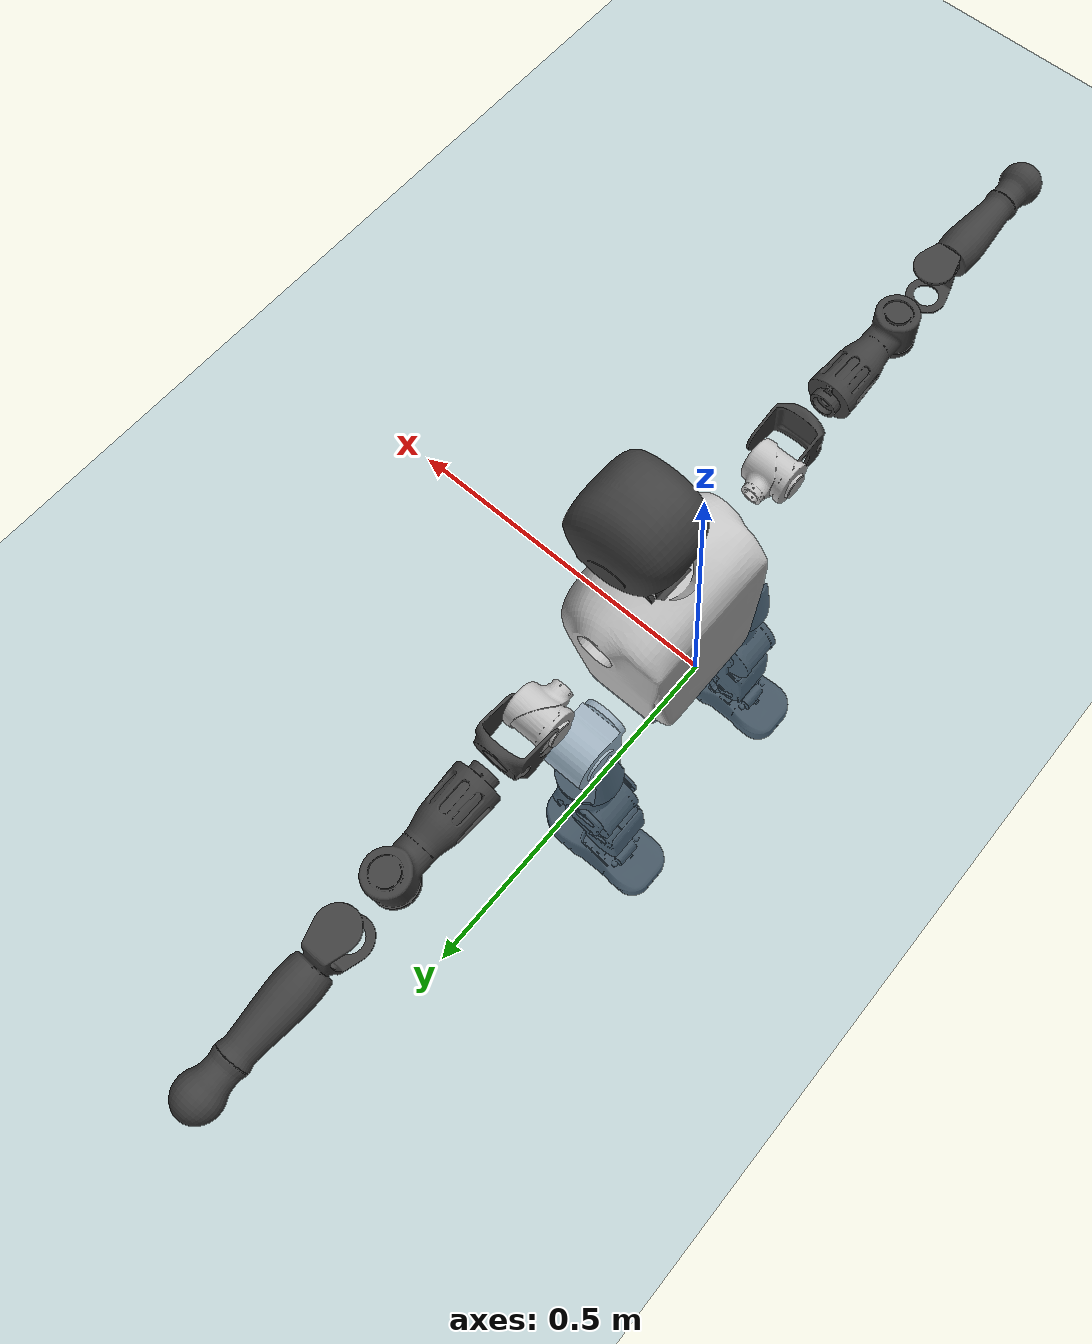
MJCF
<mujoco model="T1">
  <compiler angle="radian" assetdir="assets" balanceinertia="true" inertiafromgeom="false"/>

  <option timestep="0.005" density="1.2" viscosity="2e-05"/>

  <size nkey="1"/>

  <visual>
    <quality shadowsize="8192"/>
    <map shadowclip="0.5"/>
  </visual>

  <default>
    <default class="/">
      <joint armature="0.01" damping="0.01" frictionloss="0.1"/>
      <geom contype="0" conaffinity="0" group="1" solref="-1000 -80"/>
      <site size="0.01 0.005 0.005" group="5"/>
      <general forcelimited="true" biastype="affine" gainprm="25" biasprm="0 -25 -0.6"/>
      <default class="t1">
        <geom rgba="0.25 0.25 0.25 1"/>
        <default class="visual">
          <geom type="mesh" group="2"/>
        </default>
        <default class="collision">
          <geom group="3"/>
        </default>
        <default class="foot">
          <geom size="0.1115 0.05 0.015" type="box" condim="6" group="4" priority="1" solimp="0.015 1 0.015"/>
        </default>
        <default class="reward_collision_sphere">
          <geom group="5" rgba="1 0 0 1"/>
        </default>
      </default>
    </default>
  </default>

  <asset>
    <texture type="skybox" colorspace="auto" name="//unnamed_texture_0" builtin="gradient" rgb1="0.95 0.95 0.95" rgb2="0.95 0.95 0.95" width="100" height="600"/>
    <texture type="2d" colorspace="auto" name="texplane" builtin="checker" rgb1="0.345 0.575 0.748" rgb2="0.345 0.575 0.748" markrgb="1 1 1" width="512" height="512"/>
    <material name="MatPlane" class="/" texture="texplane" texuniform="true" texrepeat="2 2" specular="0.9"/>
    <mesh name="Trunk" class="/" file="Trunk.stl"/>
    <mesh name="H1" class="/" file="H1.stl"/>
    <mesh name="H2" class="/" file="H2.stl"/>
    <mesh name="AL1" class="/" file="AL1.stl"/>
    <mesh name="AL2" class="/" file="AL2.stl"/>
    <mesh name="AL3" class="/" file="AL3.stl"/>
    <mesh name="left_hand_link" class="/" file="left_hand_link.stl"/>
    <mesh name="AR1" class="/" file="AR1.stl"/>
    <mesh name="AR2" class="/" file="AR2.stl"/>
    <mesh name="AR3" class="/" file="AR3.stl"/>
    <mesh name="right_hand_link" class="/" file="right_hand_link.stl"/>
    <mesh name="Waist" class="/" file="Waist.stl"/>
    <mesh name="Hip_Pitch_Left" class="/" file="Hip_Pitch_Left.stl"/>
    <mesh name="Hip_Roll_Left" class="/" file="Hip_Roll_Left.stl"/>
    <mesh name="Hip_Yaw_Left" class="/" file="Hip_Yaw_Left.stl"/>
    <mesh name="Shank_Left" class="/" file="Shank_Left.stl"/>
    <mesh name="Ankle_Cross_Left" class="/" file="Ankle_Cross_Left.stl"/>
    <mesh name="left_foot_link" class="/" file="left_foot_link.stl"/>
    <mesh name="Hip_Pitch_Right" class="/" file="Hip_Pitch_Right.stl"/>
    <mesh name="Hip_Roll_Right" class="/" file="Hip_Roll_Right.stl"/>
    <mesh name="Hip_Yaw_Right" class="/" file="Hip_Yaw_Right.stl"/>
    <mesh name="Shank_Right" class="/" file="Shank_Right.stl"/>
    <mesh name="Ankle_Cross_Right" class="/" file="Ankle_Cross_Right.stl"/>
    <mesh name="right_foot_link" class="/" file="right_foot_link.stl"/>
  </asset>

  <worldbody>
    <geom name="floor" class="/" size="100 100 0.125" type="plane" group="0" material="MatPlane"/>
    <light name="toplight_shadow" class="/" pos="0 0 5" dir="0.0990148 0.0990148 -0.990148" type="directional" ambient="0.04 0.04 0.04" diffuse="0.55 0.55 0.55" specular="0.12 0.12 0.12"/>
    <light name="toplight_fill" class="/" pos="0 0 5" dir="0.0990148 0.0990148 -0.990148" type="directional" castshadow="false" ambient="0.04 0.04 0.04" diffuse="0.3 0.3 0.3" specular="0.08 0.08 0.08"/>
    <body name="trunk" childclass="t1" pos="0.000595483 0.00499185 0.00451594" quat="1 -0.000202047 0.000211937 0.000180618">
      <inertial pos="0.0423772 -0.0141798 0.079942" quat="0.999047 -0.0174257 -0.00835674 -0.0391292" mass="18.5455" diaginertia="0.0663104 0.88378 0.0319285"/>
      <joint name="//unnamed_joint_0" type="free" armature="0" damping="0" frictionloss="0"/>
      <geom name="//unnamed_geom_1" class="visual" rgba="0.76 0.76 0.76 1" mesh="Trunk"/>
      <geom name="//unnamed_geom_2" class="collision" size="0.0851289 0.113505 0.170258" pos="0.0553204 0 0.104866" type="box"/>
      <geom name="//unnamed_geom_3" class="reward_collision_sphere" size="0.130531" pos="0.0553204 0 0.0873883"/>
      <geom name="//unnamed_geom_4" class="reward_collision_sphere" size="0.0170258" pos="0.0553204 0.136788 0"/>
      <geom name="//unnamed_geom_5" class="reward_collision_sphere" size="0.0170258" pos="0.0553204 -0.136788 0"/>
      <geom name="//unnamed_geom_6" class="reward_collision_sphere" size="0.0170258" pos="0.0553204 0.172191 0.157299"/>
      <geom name="//unnamed_geom_7" class="reward_collision_sphere" size="0.0170258" pos="0.0553204 -0.172191 0.157299"/>
      <site name="imu" pos="0.0373429 0.0318947 -0.0173577" size="0.0113505"/>
      <camera name="track" pos="0 -3.21853 0" quat="0.707107 0.707107 0 0" mode="trackcom"/>
      <camera name="ego_camera" pos="0.112485 0 0.367031" quat="-0.5 -0.5 0.5 0.5"/>
      <body name="H1" pos="0.0620992 0.0111124 0.20048" quat="1 0.000302114 -2.00223e-05 5.8999e-05">
        <inertial pos="-0.00135888 -0.0165122 0.0524955" quat="0.758081 0.0172673 -0.0470611 0.65023" mass="0.728878" diaginertia="0.000168535 0.00272511 7.35518e-05"/>
        <joint name="AAHead_yaw" pos="0 0 0" axis="0.0221894 0.0154247 0.999635" stiffness="0.00696883" range="-1.55527 1.81511" armature="0.0107787" damping="0" frictionloss="0.196909"/>
        <geom name="//unnamed_geom_8" class="visual" mesh="H1"/>
        <body name="H2" pos="-0.00349459 0.00471776 0.0648847" quat="1 4.84248e-05 3.87628e-05 -2.68306e-05">
          <inertial pos="0.0111863 0.0144441 0.0910463" quat="0.995788 0.0617608 -0.035023 -0.0580096" mass="0.939235" diaginertia="0.00135757 0.0210879 0.000775237"/>
          <joint name="Head_pitch" pos="0 0 0" axis="-0.0012404 -0.999881 0.0153967" stiffness="0.00333619" range="-1.22438 0.324491" armature="0.0105671" damping="0" frictionloss="0.161484"/>
          <geom name="//unnamed_geom_9" class="visual" mesh="H2"/>
          <geom name="//unnamed_geom_10" class="collision" size="0.0908041" pos="0.00922007 0 0.0961271"/>
          <geom name="//unnamed_geom_11" class="reward_collision_sphere" size="0.102155" pos="0.0184401 0 0.0873883"/>
        </body>
      </body>
      <body name="AL1" pos="0.0619989 0.173858 0.198476" quat="0.999982 -0.00258939 -0.00148781 0.0051133">
        <inertial pos="-0.000537907 0.0784902 0.00537035" quat="0.475332 0.547241 -0.480443 0.493722" mass="0.784273" diaginertia="0.000869703 0.0119763 0.000150856"/>
        <joint name="Left_Shoulder_Pitch" pos="0 0 0" axis="-0.00253819 0.999983 0.00517516" stiffness="0.000823762" range="-3.36038 0.999277" armature="0.0113579" damping="0.0240088" frictionloss="0.109254"/>
        <geom name="//unnamed_geom_12" class="visual" rgba="0.76 0.76 0.76 1" mesh="AL1"/>
        <body name="AL2" pos="-6.56126e-06 0.06488 0.00887039" quat="0.99999 -0.00241481 0.00129206 -0.00356216">
          <inertial pos="-0.00886056 0.0471327 -0.00729377" quat="0.463642 0.469998 -0.495891 0.56412" mass="0.215036" diaginertia="0.000268209 0.00369312 7.58986e-05"/>
          <joint name="Left_Shoulder_Roll" pos="0 0 0" axis="-0.999998 0.00115609 -0.00144892" range="-1.57129 1.74324" armature="0.0101382" damping="0" frictionloss="0.128912"/>
          <geom name="//unnamed_geom_13" class="visual" mesh="AL2"/>
          <body name="AL3" pos="0.00101756 0.0829032 -0.00675354" quat="0.999999 0.00060292 -6.81501e-05 -0.000837963">
            <inertial pos="0.0129844 0.137297 0.00767741" quat="0.681713 0.73115 0.0241339 -0.0102914" mass="1.13462" diaginertia="0.0077669 0.115984 0.000260784"/>
            <joint name="Left_Elbow_Pitch" pos="0 0 0" axis="0.0140226 -0.999485 -0.0288623" range="-2.3153 2.01626" armature="0.011863" damping="0" frictionloss="0.109236"/>
            <geom name="//unnamed_geom_14" class="visual" mesh="AL3"/>
            <geom name="//unnamed_geom_15" class="collision" size="0.0340516 0.0851289" pos="0 0.0804633 0" quat="0.707105 0.707108 0 0" type="cylinder"/>
            <geom name="//unnamed_geom_16" class="reward_collision_sphere" size="0.0408619"/>
            <body name="left_hand_link" pos="-0.00611955 0.224148 0.0135255" quat="1 0.000698964 -0.000440982 0.000528854">
              <inertial pos="-0.000833482 0.177493 0.000231616" quat="0.696703 0.717263 0.000557787 -0.0117762" mass="0.46609" diaginertia="0.00615572 0.0870886 0.000111501"/>
              <joint name="Left_Elbow_Yaw" pos="0 0 0" axis="0.0235259 0.00447119 0.999713" range="-2.18962 0.011235" armature="0.0099988" damping="0.0800419" frictionloss="0.055229"/>
              <geom name="//unnamed_geom_17" class="visual" mesh="left_hand_link"/>
              <geom name="//unnamed_geom_18" class="collision" size="0.0340516 0.099317" pos="0 0.209205 0" quat="0.707105 0.707108 0 0" type="cylinder"/>
              <geom name="//unnamed_geom_19" class="reward_collision_sphere" size="0.0567526"/>
              <geom name="//unnamed_geom_20" class="reward_collision_sphere" size="0.0397268" pos="0 0.177019 0"/>
              <geom name="//unnamed_geom_21" class="reward_collision_sphere" size="0.0397268" pos="0 0.345992 0"/>
            </body>
          </body>
        </body>
      </body>
      <body name="AR1" pos="0.0493993 -0.170018 0.196167" quat="0.999993 0.00124287 -0.00185949 -0.00315708">
        <inertial pos="0.0072689 -0.0737794 0.0128327" quat="0.515907 0.527626 -0.451122 0.501936" mass="0.621411" diaginertia="0.000843966 0.0119687 0.0001234"/>
        <joint name="Right_Shoulder_Pitch" pos="0 0 0" axis="-0.0330631 -0.999438 -0.00545257" range="-1.24113 3.2861" armature="0.010046" damping="0.0655438" frictionloss="0.189111"/>
        <geom name="//unnamed_geom_22" class="visual" rgba="0.76 0.76 0.76 1" mesh="AR1"/>
        <body name="AR2" pos="0.0127499 -0.0735851 -0.00181913" quat="1 -0.000136993 -0.000260053 0.000345401">
          <inertial pos="0.0111104 -0.0468821 -0.0018095" quat="0.494074 0.530227 -0.470472 0.503394" mass="0.218276" diaginertia="0.000227022 0.00343642 7.58893e-05"/>
          <joint name="Right_Shoulder_Roll" pos="0 0 0" axis="-0.999071 0.0264007 0.0340657" range="-1.74365 1.55861" armature="0.0110836" damping="0.079938" frictionloss="0.09361"/>
          <geom name="//unnamed_geom_23" class="visual" mesh="AR2"/>
          <body name="AR3" pos="-0.00327558 -0.100447 0.00540777" quat="0.999992 -0.00298729 0.00244698 -0.00105186">
            <inertial pos="-0.00399586 -0.136199 0.00325821" quat="0.732126 0.680794 -0.00857636 0.0209261" mass="1.36382" diaginertia="0.00774696 0.146321 0.000302835"/>
            <joint name="Right_Elbow_Pitch" pos="0 0 0" axis="-0.0186372 0.99971 0.0152683" stiffness="0.00203628" range="-2.24016 2.18231" armature="0.0106813" damping="0" frictionloss="0.0995073"/>
            <geom name="//unnamed_geom_24" class="visual" mesh="AR3"/>
            <geom name="//unnamed_geom_25" class="collision" size="0.0340516 0.0851289" pos="0 -0.0804633 0" quat="0.707105 0.707108 0 0" type="cylinder"/>
            <geom name="//unnamed_geom_26" class="reward_collision_sphere" size="0.0408619"/>
            <body name="right_hand_link" pos="0.00984243 -0.24483 -0.0138293" quat="0.999991 -0.00294669 -0.00232681 -0.00203952">
              <inertial pos="0.00155048 -0.185315 -0.00460538" quat="0.716189 0.697905 0.00067925 0.00143693" mass="0.455785" diaginertia="0.00477401 0.0768915 0.000107455"/>
              <joint name="Right_Elbow_Yaw" pos="0 0 0" axis="0.000474422 0.00649528 0.999979" range="-0.170355 2.41407" armature="0.0115772" damping="0.0088156" frictionloss="0.040282"/>
              <geom name="//unnamed_geom_27" class="visual" mesh="right_hand_link"/>
              <geom name="//unnamed_geom_28" class="collision" size="0.0340516 0.099317" pos="0 -0.209205 0" quat="0.707105 0.707108 0 0" type="cylinder"/>
              <geom name="//unnamed_geom_29" class="reward_collision_sphere" size="0.0567526"/>
              <geom name="//unnamed_geom_30" class="reward_collision_sphere" size="0.0397268" pos="0 -0.177019 0"/>
              <geom name="//unnamed_geom_31" class="reward_collision_sphere" size="0.0397268" pos="0 -0.345992 0"/>
            </body>
          </body>
        </body>
      </body>
      <body name="Waist" pos="0.0676371 0.00100306 -0.0884078" quat="0.999997 -0.000776614 0.000664947 0.00210217">
        <inertial pos="0.0171255 -0.00286962 0.00456834" quat="0.984228 0.00405217 -0.176796 0.00463835" mass="4.63598" diaginertia="0.00460255 0.0625657 0.00248759"/>
        <joint name="Waist" pos="0 0 0" axis="-0.00923602 -0.0201666 0.999754" stiffness="0.00611193" range="-1.42326 1.59705" armature="0.00664986" damping="0" frictionloss="0.11859"/>
        <geom name="//unnamed_geom_32" class="visual" mesh="Waist"/>
        <body name="Hip_Pitch_Left" pos="-0.00159079 0.163246 0.0110195" quat="0.999999 0.000791027 -0.000673299 -0.000214491">
          <inertial pos="0.002402 -0.0221318 -0.0248419" quat="0.979354 0.200492 0.000767757 -0.0258697" mass="1.26881" diaginertia="0.00123799 0.0142265 0.000657965"/>
          <joint name="Left_Hip_Pitch" pos="0 0 0" axis="0.0108066 0.999937 -0.00306717" range="-1.8237 1.31685" armature="0.00347109" damping="0" frictionloss="0.0860138"/>
          <geom name="//unnamed_geom_33" class="visual" rgba="0.76 0.76 0.76 1" mesh="Hip_Pitch_Left"/>
          <body name="Hip_Roll_Left" pos="-0.0125789 0.00634257 -0.0105635" quat="1 0.000367161 6.63106e-05 0.000374893">
            <inertial pos="0.00784053 -0.00155736 -0.0532988" quat="0.673271 -0.0220474 -0.0532292 0.737148" mass="0.616671" diaginertia="0.00123636 0.0140467 0.000250336"/>
            <joint name="Left_Hip_Roll" pos="0 0 0" axis="-0.998445 -0.0557354 -0.000927328" range="-1.56896 0.142243" armature="0.00418104" damping="0.022129" frictionloss="0.15571"/>
            <geom name="//unnamed_geom_34" class="visual" mesh="Hip_Roll_Left"/>
            <geom name="//unnamed_geom_35" class="reward_collision_sphere" size="0.0624279"/>
            <body name="Hip_Yaw_Left" pos="0.00868513 -0.00219851 -0.0816369" quat="1 -0.000844755 -0.000115082 -0.000330317">
              <inertial pos="0.00461563 -0.00411878 -0.0754168" quat="0.694376 -0.0298594 -0.0348913 0.718146" mass="3.28441" diaginertia="0.0170667 0.313751 0.00131327"/>
              <joint name="Left_Hip_Yaw" pos="0 0 0" axis="-0.00647643 -0.00924074 -0.999936" range="-0.85501 0.765897" armature="0.011899" damping="0.0321741" frictionloss="0.106004"/>
              <geom name="//unnamed_geom_36" class="visual" mesh="Hip_Yaw_Left"/>
              <geom name="//unnamed_geom_37" class="collision" size="0.0567526 0.0908041" type="cylinder"/>
              <body name="Shank_Left" pos="-0.0267756 -0.00107487 -0.102169" quat="1 0.000361255 0.000528377 2.67926e-05">
                <inertial pos="-0.0025449 -0.0108186 -0.120601" quat="0.997544 0.0010273 -0.0233955 0.0660144" mass="2.97355" diaginertia="0.023346 0.376648 0.000902495"/>
                <joint name="Left_Knee_Pitch" pos="0 0 0" axis="-0.00156824 0.999998 -0.000878712" range="-0.132028 2.4619" armature="0.0107605" damping="0.000129444" frictionloss="0.13067"/>
                <geom name="//unnamed_geom_38" class="visual" mesh="Shank_Left"/>
                <geom name="//unnamed_geom_39" class="collision" size="0.0567526 0.0851289" pos="0 0 -0.104866" type="cylinder"/>
                <geom name="//unnamed_geom_40" class="reward_collision_sphere" size="0.0737784"/>
                <body name="Ankle_Cross_Left" pos="-0.00132248 -0.00271622 -0.255835" quat="1 0.000292103 -3.81604e-05 -0.000403554">
                  <inertial pos="0.00259121 -0.00960043 -0.0141985" quat="0.430414 0.540154 0.590129 0.418" mass="0.0942692" diaginertia="1.68711e-05 0.000309945 5.90073e-06"/>
                  <joint name="Left_Ankle_Pitch" pos="0 0 0" axis="4.7589e-05 1 0.000357536" range="-1.12383 0.299822" armature="0.0149136" damping="0.0195631" frictionloss="0.0901316"/>
                  <geom name="//unnamed_geom_41" class="visual" mesh="Ankle_Cross_Left"/>
                  <body name="left_foot_link" pos="0.00344873 0.00889123 -0.0182841" quat="0.999995 0.00107782 -0.000759577 -0.00291075">
                    <inertial pos="0.00969116 -0.000798258 0.00283576" quat="0.00138999 0.636864 -0.000787164 0.770975" mass="1.14164" diaginertia="0.00236697 0.0266629 0.00104359"/>
                    <joint name="Left_Ankle_Roll" pos="0 0 0" axis="-0.999994 -0.00224256 -0.00270809" range="-0.489648 0.443195" armature="0.0120803" damping="0.0216711" frictionloss="0.113945"/>
                    <geom name="//unnamed_geom_42" class="visual" mesh="left_foot_link"/>
                    <geom name="left_foot" class="foot" size="0.0924457 0.0296322 0.0185569" pos="0.00922007 0 -0.0131082"/>
                    <geom name="//unnamed_geom_44" class="reward_collision_sphere" size="0.0590227" pos="0.00922007 0 -0.0131082"/>
                    <geom name="//unnamed_geom_45" class="reward_collision_sphere" size="0.0340516" pos="0.0875907 -0.0370131 -0.0131082"/>
                    <geom name="//unnamed_geom_46" class="reward_collision_sphere" size="0.0340516" pos="-0.0645405 -0.0370131 -0.0131082"/>
                    <site name="left_foot" class="foot" pos="0.00922007 0 -0.0131082" size="0.0113505"/>
                  </body>
                </body>
              </body>
            </body>
          </body>
        </body>
        <body name="Hip_Pitch_Right" pos="0.00228969 -0.174634 -0.00371723" quat="0.999981 -0.000733227 0.00532109 -0.00298072">
          <inertial pos="0.0110192 0.0163908 -0.0273762" quat="0.970386 -0.241033 0.00501761 -0.0150957" mass="1.33357" diaginertia="0.00107223 0.0146435 0.000667933"/>
          <joint name="Right_Hip_Pitch" pos="0 0 0" axis="-0.00755826 -0.999948 -0.00691842" range="-1.58368 2.07762" armature="0.0162782" damping="0" frictionloss="0.120711"/>
          <geom name="//unnamed_geom_47" class="visual" rgba="0.76 0.76 0.76 1" mesh="Hip_Pitch_Right"/>
          <body name="Hip_Roll_Right" pos="-0.0129813 0.00116803 -0.00810881" quat="0.999994 0.00150646 0.00220514 -0.00206194">
            <inertial pos="0.00213807 -0.00482676 -0.0552393" quat="0.676939 -0.0370984 0.0380637 0.734117" mass="0.59493" diaginertia="0.00116616 0.0139796 0.000256839"/>
            <joint name="Right_Hip_Roll" pos="0 0 0" axis="-0.999954 -0.00489604 0.00828752" range="-0.488986 1.6268" armature="0.0119438" damping="0" frictionloss="0.0737171"/>
            <geom name="//unnamed_geom_48" class="visual" mesh="Hip_Roll_Right"/>
            <geom name="//unnamed_geom_49" class="reward_collision_sphere" size="0.0624279"/>
            <body name="Hip_Yaw_Right" pos="0.00604376 0.00329017 -0.0723982" quat="1 -1.86068e-05 0.000339276 0.000822376">
              <inertial pos="-0.00475287 0.00697953 -0.0651543" quat="0.728439 -0.0207798 -0.0310367 0.684091" mass="2.92399" diaginertia="0.0163892 0.235688 0.00138365"/>
              <joint name="Right_Hip_Yaw" pos="0 0 0" axis="0.0670638 0.0319239 -0.997238" stiffness="0.00280128" range="-1.04791 0.927147" armature="0.00493282" damping="0.071049" frictionloss="0.112285"/>
              <geom name="//unnamed_geom_50" class="visual" mesh="Hip_Yaw_Right"/>
              <geom name="//unnamed_geom_51" class="collision" size="0.0567526 0.0908041" type="cylinder"/>
              <body name="Shank_Right" pos="-0.00804316 -0.000105285 -0.127753" quat="0.999993 -0.00329625 0.00091754 0.00177274">
                <inertial pos="-0.00784954 0.00143054 -0.0969442" quat="0.999212 -0.00317417 -0.0208695 -0.0336171" mass="2.17782" diaginertia="0.0201117 0.338184 0.000819684"/>
                <joint name="Right_Knee_Pitch" pos="0 0 0" axis="0.0455292 -0.998609 -0.0265939" range="-2.59067 -0.107542" armature="0.00348964" damping="0" frictionloss="0.108399"/>
                <geom name="//unnamed_geom_52" class="visual" mesh="Shank_Right"/>
                <geom name="//unnamed_geom_53" class="collision" size="0.0567526 0.0851289" pos="0 0 -0.104866" type="cylinder"/>
                <geom name="//unnamed_geom_54" class="reward_collision_sphere" size="0.0737784"/>
                <body name="Ankle_Cross_Right" pos="0.00783784 -0.00401583 -0.245734" quat="1 -3.7898e-05 -7.6787e-05 0.000156496">
                  <inertial pos="-0.00449723 0.00834478 -0.00709892" quat="0.440338 0.567522 0.55116 0.424551" mass="0.0914752" diaginertia="1.80996e-05 0.000258067 4.8955e-06"/>
                  <joint name="Right_Ankle_Pitch" pos="0 0 0" axis="0.0257378 -0.999429 0.0218999" stiffness="0.0547061" range="-0.123058 1.10151" armature="0.0116343" damping="0" frictionloss="0.129752"/>
                  <geom name="//unnamed_geom_55" class="visual" mesh="Ankle_Cross_Right"/>
                  <body name="right_foot_link" pos="-0.0123003 0.000614653 -0.00455493" quat="1 -0.000361842 -4.94113e-05 -0.000138942">
                    <inertial pos="0.0136318 0.00337936 -0.00670755" quat="-0.00324533 0.618257 -0.00447333 0.785957" mass="1.02146" diaginertia="0.00177753 0.0290813 0.00111358"/>
                    <joint name="Right_Ankle_Roll" pos="0 0 0" axis="-0.999066 0.0427843 0.0059925" stiffness="0.00414886" range="-0.177316 0.435805" armature="0.0109737" damping="0.0636504" frictionloss="0.103902"/>
                    <geom name="//unnamed_geom_56" class="visual" mesh="right_foot_link"/>
                    <geom name="right_foot" class="foot" size="0.0930672 0.0659557 0.0199825" pos="0.00922007 0 -0.0131082"/>
                    <geom name="//unnamed_geom_58" class="reward_collision_sphere" size="0.0454021"/>
                    <geom name="//unnamed_geom_59" class="reward_collision_sphere" size="0.0340516" pos="0.00922007 0 -0.0131082"/>
                    <geom name="//unnamed_geom_60" class="reward_collision_sphere" size="0.0340516" pos="0.0875907 0.0370131 -0.0131082"/>
                    <geom name="//unnamed_geom_61" class="reward_collision_sphere" size="0.0340516" pos="-0.0645405 0.0370131 -0.0131082"/>
                    <site name="right_foot" class="foot" pos="0.00922007 0 -0.0131082" size="0.0113505"/>
                  </body>
                </body>
              </body>
            </body>
          </body>
        </body>
      </body>
    </body>
  </worldbody>

  <contact>
    <pair class="/" geom1="floor" geom2="left_foot" name="//unnamed_contact_0"/>
    <pair class="/" geom1="floor" geom2="right_foot" name="//unnamed_contact_1"/>
  </contact>

  <actuator>
    <general name="AAHead_yaw" class="/" joint="AAHead_yaw" forcerange="-6.8453 6.8453" gainprm="35.226" biasprm="0 -35.226 -0.705211"/>
    <general name="Head_pitch" class="/" joint="Head_pitch" forcerange="-8.10486 8.10486" gainprm="35.226" biasprm="0 -35.226 -0.705211"/>
    <general name="Left_Shoulder_Pitch" class="/" joint="Left_Shoulder_Pitch" forcerange="-26.2019 26.2019" gainprm="35.226" biasprm="0 -35.226 -0.705211"/>
    <general name="Left_Shoulder_Roll" class="/" joint="Left_Shoulder_Roll" forcerange="-23.6079 23.6079" gainprm="35.226" biasprm="0 -35.226 -0.705211"/>
    <general name="Left_Elbow_Pitch" class="/" joint="Left_Elbow_Pitch" forcerange="-21.6695 21.6695" gainprm="35.226" biasprm="0 -35.226 -0.705211"/>
    <general name="Left_Elbow_Yaw" class="/" joint="Left_Elbow_Yaw" forcerange="-23.8326 23.8326" gainprm="35.226" biasprm="0 -35.226 -0.705211"/>
    <general name="Right_Shoulder_Pitch" class="/" joint="Right_Shoulder_Pitch" forcerange="-17.2359 17.2359" gainprm="35.226" biasprm="0 -35.226 -0.705211"/>
    <general name="Right_Shoulder_Roll" class="/" joint="Right_Shoulder_Roll" forcerange="-25.9283 25.9283" gainprm="35.226" biasprm="0 -35.226 -0.705211"/>
    <general name="Right_Elbow_Pitch" class="/" joint="Right_Elbow_Pitch" forcerange="-10.7347 10.7347" gainprm="35.226" biasprm="0 -35.226 -0.705211"/>
    <general name="Right_Elbow_Yaw" class="/" joint="Right_Elbow_Yaw" forcerange="-16.7533 16.7533" gainprm="35.226" biasprm="0 -35.226 -0.705211"/>
    <general name="Waist" class="/" joint="Waist" forcerange="-27.9269 27.9269" gainprm="35.226" biasprm="0 -35.226 -0.705211"/>
    <general name="Left_Hip_Pitch" class="/" joint="Left_Hip_Pitch" forcerange="-52.2588 52.2588" gainprm="35.226" biasprm="0 -35.226 -0.705211"/>
    <general name="Left_Hip_Roll" class="/" joint="Left_Hip_Roll" forcerange="-21.2932 21.2932" gainprm="35.226" biasprm="0 -35.226 -0.705211"/>
    <general name="Left_Hip_Yaw" class="/" joint="Left_Hip_Yaw" forcerange="-47.7177 47.7177" gainprm="35.226" biasprm="0 -35.226 -0.705211"/>
    <general name="Left_Knee_Pitch" class="/" joint="Left_Knee_Pitch" forcerange="-63.6136 63.6136" gainprm="35.226" biasprm="0 -35.226 -0.705211"/>
    <general name="Left_Ankle_Pitch" class="/" joint="Left_Ankle_Pitch" forcerange="-21.6722 21.6722" gainprm="35.226" biasprm="0 -35.226 -0.705211"/>
    <general name="Left_Ankle_Roll" class="/" joint="Left_Ankle_Roll" forcerange="-9.62042 9.62042" gainprm="35.226" biasprm="0 -35.226 -0.705211"/>
    <general name="Right_Hip_Pitch" class="/" joint="Right_Hip_Pitch" forcerange="-50.789 50.789" gainprm="35.226" biasprm="0 -35.226 -0.705211"/>
    <general name="Right_Hip_Roll" class="/" joint="Right_Hip_Roll" forcerange="-35.2989 35.2989" gainprm="35.226" biasprm="0 -35.226 -0.705211"/>
    <general name="Right_Hip_Yaw" class="/" joint="Right_Hip_Yaw" forcerange="-17.2001 17.2001" gainprm="35.226" biasprm="0 -35.226 -0.705211"/>
    <general name="Right_Knee_Pitch" class="/" joint="Right_Knee_Pitch" forcerange="-68.0534 68.0534" gainprm="35.226" biasprm="0 -35.226 -0.705211"/>
    <general name="Right_Ankle_Pitch" class="/" joint="Right_Ankle_Pitch" forcerange="-24.8242 24.8242" gainprm="35.226" biasprm="0 -35.226 -0.705211"/>
    <general name="Right_Ankle_Roll" class="/" joint="Right_Ankle_Roll" forcerange="-21.9789 21.9789" gainprm="35.226" biasprm="0 -35.226 -0.705211"/>
  </actuator>

  <sensor>
    <gyro site="imu" name="imu_angular_velocity"/>
    <velocimeter site="imu" name="imu_linear_velocity"/>
    <framelinvel objtype="site" objname="left_foot" name="left_foot_global_linear_velocity"/>
    <framelinvel objtype="site" objname="right_foot" name="right_foot_global_linear_velocity"/>
  </sensor>

  <keyframe>
    <key name="home" qpos="0 0 0.6385 1 0 0 0 0 0 0 1.4 0 -0.4 0 -1.4 0 0.4 0 -0.4 0 0 0.8 -0.4 0 0.4 0 0 -0.8 0.4 0"/>
  </keyframe>
</mujoco>
